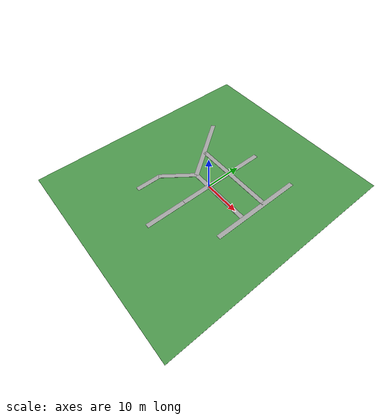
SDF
<?xml version="1.0" ?>
<sdf version="1.8">
  <world name="campus_sidewalk">

    <!-- 1. SIMULATION PHYSICS & SYSTEM PLUGINS     -->
    <physics name="1ms" type="ignored">
      <max_step_size>0.001</max_step_size>
      <real_time_factor>1.0</real_time_factor>
    </physics>

    <plugin filename="ignition-gazebo-physics-system" name="ignition::gazebo::systems::Physics"/>
    <plugin filename="ignition-gazebo-user-commands-system" name="ignition::gazebo::systems::UserCommands"/>
    <plugin filename="ignition-gazebo-scene-broadcaster-system" name="ignition::gazebo::systems::SceneBroadcaster"/>
    <plugin filename="ignition-gazebo-sensors-system" name="ignition::gazebo::systems::Sensors">
      <render_engine>ogre2</render_engine>
    </plugin>

    <!-- 2. LIGHTING & SUN                          -->
    <light type="directional" name="sun">
      <cast_shadows>true</cast_shadows>
      <pose>0 0 10 0 0 0</pose>
      <diffuse>0.8 0.8 0.8 1</diffuse>
      <specular>0.2 0.2 0.2 1</specular>
      <attenuation>
        <range>1000</range>
        <constant>0.9</constant>
        <linear>0.01</linear>
        <quadratic>0.001</quadratic>
      </attenuation>
      <direction>-0.5 0.1 -0.9</direction>
    </light>

    <!-- 3. GRASS MODEL                             -->
    <model name="grass_network">
      <static>true</static>

      <link name="grass_patch_0">
        <pose>-1.5000 0.0000 0.0 0 0 0</pose>
        <collision name="col">
          <pose>0 0 -0.0500 0 0 0</pose>
          <geometry>
            <box><size>57.0000 66.0000 0.1000</size></box>
          </geometry>
        </collision>
        <visual name="vis">
          <pose>0 0 -0.0500 0 0 0</pose>
          <geometry>
            <box><size>57.0000 66.0000 0.1000</size></box>
          </geometry>
          <material>
            <ambient>0.3 0.6 0.3 1</ambient>
            <diffuse>0.3 0.6 0.3 1</diffuse>
          </material>
          <plugin filename="ignition-gazebo-label-system" name="ignition::gazebo::systems::Label">
            <label>2</label> <!-- 2 = Grass -->
          </plugin>
        </visual>
      </link>
    </model>

    <!-- 4. SIDEWALK NETWORK                        -->
    <model name="sidewalk_network">
      <static>true</static>

      <!-- Segment 0: Length 25.00m, Width 1.20m, Height 0.05m -->
      <link name="segment_0">
        <pose>0.0000 -8.0000 0.0 0 0 1.5708</pose>
        <collision name="col">
          <pose>12.5000 0 0.0250 0 0 0</pose>
          <geometry>
            <box><size>25.0000 1.2000 0.0500</size></box>
          </geometry>
        </collision>
        <visual name="vis">
          <pose>12.5000 0 0.0250 0 0 0</pose>
          <geometry>
            <box><size>25.0000 1.2000 0.0500</size></box>
          </geometry>
          <material>
            <ambient>0.65 0.65 0.65 1</ambient>
            <diffuse>0.65 0.65 0.65 1</diffuse>
          </material>
          <plugin filename="ignition-gazebo-label-system" name="ignition::gazebo::systems::Label">
            <label>1</label> <!-- 1 = Sidewalk -->
          </plugin>
        </visual>
      </link>

      <!-- Segment 1: Length 18.00m, Width 1.20m, Height 0.05m -->
      <link name="segment_1">
        <pose>-5.0000 0.0000 0.0 0 0 0.0000</pose>
        <collision name="col">
          <pose>9.0000 0 0.0250 0 0 0</pose>
          <geometry>
            <box><size>18.0000 1.2000 0.0500</size></box>
          </geometry>
        </collision>
        <visual name="vis">
          <pose>9.0000 0 0.0250 0 0 0</pose>
          <geometry>
            <box><size>18.0000 1.2000 0.0500</size></box>
          </geometry>
          <material>
            <ambient>0.65 0.65 0.65 1</ambient>
            <diffuse>0.65 0.65 0.65 1</diffuse>
          </material>
          <plugin filename="ignition-gazebo-label-system" name="ignition::gazebo::systems::Label">
            <label>1</label> <!-- 1 = Sidewalk -->
          </plugin>
        </visual>
      </link>

      <!-- Segment 2: Length 10.00m, Width 1.20m, Height 0.05m -->
      <link name="segment_2">
        <pose>-5.0000 0.0000 0.0 0 0 -2.2143</pose>
        <collision name="col">
          <pose>5.0000 0 0.0250 0 0 0</pose>
          <geometry>
            <box><size>10.0000 1.2000 0.0500</size></box>
          </geometry>
        </collision>
        <visual name="vis">
          <pose>5.0000 0 0.0250 0 0 0</pose>
          <geometry>
            <box><size>10.0000 1.2000 0.0500</size></box>
          </geometry>
          <material>
            <ambient>0.65 0.65 0.65 1</ambient>
            <diffuse>0.65 0.65 0.65 1</diffuse>
          </material>
          <plugin filename="ignition-gazebo-label-system" name="ignition::gazebo::systems::Label">
            <label>1</label> <!-- 1 = Sidewalk -->
          </plugin>
        </visual>
      </link>

      <!-- Segment 3: Length 20.00m, Width 1.20m, Height 0.05m -->
      <link name="segment_3">
        <pose>-5.0000 0.0000 0.0 0 0 2.2143</pose>
        <collision name="col">
          <pose>10.0000 0 0.0250 0 0 0</pose>
          <geometry>
            <box><size>20.0000 1.2000 0.0500</size></box>
          </geometry>
        </collision>
        <visual name="vis">
          <pose>10.0000 0 0.0250 0 0 0</pose>
          <geometry>
            <box><size>20.0000 1.2000 0.0500</size></box>
          </geometry>
          <material>
            <ambient>0.65 0.65 0.65 1</ambient>
            <diffuse>0.65 0.65 0.65 1</diffuse>
          </material>
          <plugin filename="ignition-gazebo-label-system" name="ignition::gazebo::systems::Label">
            <label>1</label> <!-- 1 = Sidewalk -->
          </plugin>
        </visual>
      </link>

      <!-- Segment 4: Length 7.00m, Width 1.20m, Height 0.05m -->
      <link name="segment_4">
        <pose>-10.8576 -14.6374 0.0 0 0 1.5708</pose>
        <collision name="col">
          <pose>3.5000 0 0.0250 0 0 0</pose>
          <geometry>
            <box><size>7.0000 1.2000 0.0500</size></box>
          </geometry>
        </collision>
        <visual name="vis">
          <pose>3.5000 0 0.0250 0 0 0</pose>
          <geometry>
            <box><size>7.0000 1.2000 0.0500</size></box>
          </geometry>
          <material>
            <ambient>0.65 0.65 0.65 1</ambient>
            <diffuse>0.65 0.65 0.65 1</diffuse>
          </material>
          <plugin filename="ignition-gazebo-label-system" name="ignition::gazebo::systems::Label">
            <label>1</label> <!-- 1 = Sidewalk -->
          </plugin>
        </visual>
      </link>

      <!-- Segment 5: Length 23.00m, Width 1.20m, Height 0.05m -->
      <link name="segment_5">
        <pose>-10.0000 7.0000 0.0 0 0 0.0000</pose>
        <collision name="col">
          <pose>11.5000 0 0.0250 0 0 0</pose>
          <geometry>
            <box><size>23.0000 1.2000 0.0500</size></box>
          </geometry>
        </collision>
        <visual name="vis">
          <pose>11.5000 0 0.0250 0 0 0</pose>
          <geometry>
            <box><size>23.0000 1.2000 0.0500</size></box>
          </geometry>
          <material>
            <ambient>0.65 0.65 0.65 1</ambient>
            <diffuse>0.65 0.65 0.65 1</diffuse>
          </material>
          <plugin filename="ignition-gazebo-label-system" name="ignition::gazebo::systems::Label">
            <label>1</label> <!-- 1 = Sidewalk -->
          </plugin>
        </visual>
      </link>

      <!-- Segment 6: Length 11.00m, Width 1.20m, Height 0.05m -->
      <link name="segment_6">
        <pose>0.0000 -19.0000 0.0 0 0 1.5708</pose>
        <collision name="col">
          <pose>5.5000 0 0.0250 0 0 0</pose>
          <geometry>
            <box><size>11.0000 1.2000 0.0500</size></box>
          </geometry>
        </collision>
        <visual name="vis">
          <pose>5.5000 0 0.0250 0 0 0</pose>
          <geometry>
            <box><size>11.0000 1.2000 0.0500</size></box>
          </geometry>
          <material>
            <ambient>0.65 0.65 0.65 1</ambient>
            <diffuse>0.65 0.65 0.65 1</diffuse>
          </material>
          <plugin filename="ignition-gazebo-label-system" name="ignition::gazebo::systems::Label">
            <label>1</label> <!-- 1 = Sidewalk -->
          </plugin>
        </visual>
      </link>

      <!-- Segment 7: Length 25.00m, Width 1.20m, Height 0.05m -->
      <link name="segment_7">
        <pose>13.0000 -8.0000 0.0 0 0 1.5708</pose>
        <collision name="col">
          <pose>12.5000 0 0.0250 0 0 0</pose>
          <geometry>
            <box><size>25.0000 1.2000 0.0500</size></box>
          </geometry>
        </collision>
        <visual name="vis">
          <pose>12.5000 0 0.0250 0 0 0</pose>
          <geometry>
            <box><size>25.0000 1.2000 0.0500</size></box>
          </geometry>
          <material>
            <ambient>0.65 0.65 0.65 1</ambient>
            <diffuse>0.65 0.65 0.65 1</diffuse>
          </material>
          <plugin filename="ignition-gazebo-label-system" name="ignition::gazebo::systems::Label">
            <label>1</label> <!-- 1 = Sidewalk -->
          </plugin>
        </visual>
      </link>
    </model>

    <!-- 5. PREDEFINED SPAWN POINTS                 -->
    <!-- Predefined Spawn Point 1 -->
    <frame name="start_position_1">
      <pose>0.0000 -8.0000 0.1000 0.0000 0.0000 1.5708</pose>
    </frame>

    <!-- Predefined Spawn Point 2 -->
    <frame name="start_position_2">
      <pose>0.0000 -1.5000 0.1000 0.0000 0.0000 1.5708</pose>
    </frame>

    <!-- Predefined Spawn Point 3 -->
    <frame name="start_position_3">
      <pose>0.0000 -8.5000 0.1000 0.0000 0.0000 -1.5708</pose>
    </frame>

    <!-- Predefined Spawn Point 4 -->
    <frame name="start_position_4">
      <pose>-6.5000 7.0000 0.1000 0.0000 0.0000 3.1416</pose>
    </frame>

    <!-- Predefined Spawn Point 5 -->
    <frame name="start_position_5">
      <pose>-16.4000 15.2000 0.1000 0.0000 0.0000 -0.8727</pose>
    </frame>

    <!-- Predefined Spawn Point 6 -->
    <frame name="start_position_6">
      <pose>-1.0000 0.0000 0.1000 0.0000 0.0000 3.1416</pose>
    </frame>

  </world>
</sdf>
